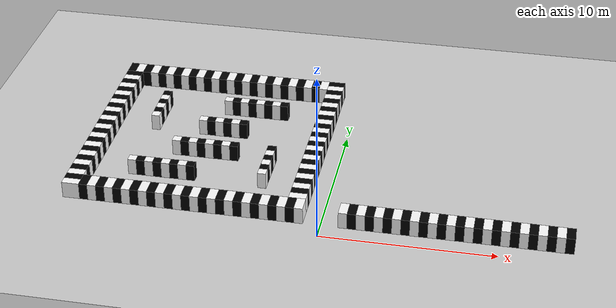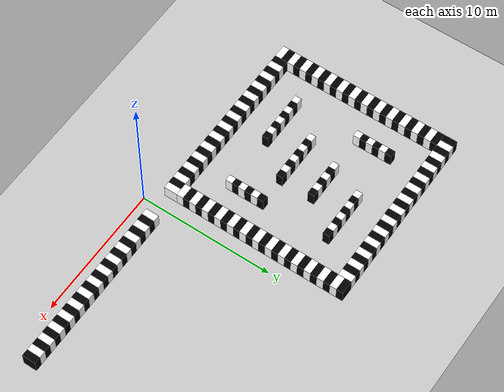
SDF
<sdf version="1.9">
 <world name="default">
  <model name="ground_plane">
   <static>true</static>
   <link name="link">
    <collision name="collision">
     <geometry><plane><normal>0 0 1</normal><size>100 100</size></plane></geometry>
    </collision>
    <visual name="visual">
     <geometry><plane><normal>0 0 1</normal><size>100 100</size></plane></geometry>
     <material>
      <ambient>0.8 0.8 0.8 1</ambient>
      <diffuse>0.8 0.8 0.8 1</diffuse>
      <specular>0.8 0.8 0.8 1</specular>
     </material>
    </visual>
   </link>
  </model>
  <model name="env3wall4">
   <static>true</static>
   <link name="link">
    <collision name="collision1">
     <geometry>
      <polyline>
       <point>1 1</point>
       <point>1 2</point>
       <point>14 2</point>
       <point>14 1</point>
       <height>1</height>
      </polyline>
     </geometry>
    </collision>
    <visual name="s1">
     <pose>1.25 1.5 0.5 0 0 0</pose>
     <geometry><box><size>0.5 1 1</size></box></geometry>
     <material><ambient>1 1 1 1</ambient><diffuse>1 1 1 1</diffuse></material>
    </visual>
    <visual name="s2">
     <pose>1.75 1.5 0.5 0 0 0</pose>
     <geometry><box><size>0.5 1 1</size></box></geometry>
     <material><ambient>0 0 0 1</ambient><diffuse>0 0 0 1</diffuse></material>
    </visual>
    <visual name="s3">
     <pose>2.25 1.5 0.5 0 0 0</pose>
     <geometry><box><size>0.5 1 1</size></box></geometry>
     <material><ambient>1 1 1 1</ambient><diffuse>1 1 1 1</diffuse></material>
    </visual>
    <visual name="s4">
     <pose>2.75 1.5 0.5 0 0 0</pose>
     <geometry><box><size>0.5 1 1</size></box></geometry>
     <material><ambient>0 0 0 1</ambient><diffuse>0 0 0 1</diffuse></material>
    </visual>
    <visual name="s5">
     <pose>3.25 1.5 0.5 0 0 0</pose>
     <geometry><box><size>0.5 1 1</size></box></geometry>
     <material><ambient>1 1 1 1</ambient><diffuse>1 1 1 1</diffuse></material>
    </visual>
    <visual name="s6">
     <pose>3.75 1.5 0.5 0 0 0</pose>
     <geometry><box><size>0.5 1 1</size></box></geometry>
     <material><ambient>0 0 0 1</ambient><diffuse>0 0 0 1</diffuse></material>
    </visual>
    <visual name="s7">
     <pose>4.25 1.5 0.5 0 0 0</pose>
     <geometry><box><size>0.5 1 1</size></box></geometry>
     <material><ambient>1 1 1 1</ambient><diffuse>1 1 1 1</diffuse></material>
    </visual>
    <visual name="s8">
     <pose>4.75 1.5 0.5 0 0 0</pose>
     <geometry><box><size>0.5 1 1</size></box></geometry>
     <material><ambient>0 0 0 1</ambient><diffuse>0 0 0 1</diffuse></material>
    </visual>
    <visual name="s9">
     <pose>5.25 1.5 0.5 0 0 0</pose>
     <geometry><box><size>0.5 1 1</size></box></geometry>
     <material><ambient>1 1 1 1</ambient><diffuse>1 1 1 1</diffuse></material>
    </visual>
    <visual name="s10">
     <pose>5.75 1.5 0.5 0 0 0</pose>
     <geometry><box><size>0.5 1 1</size></box></geometry>
     <material><ambient>0 0 0 1</ambient><diffuse>0 0 0 1</diffuse></material>
    </visual>
    <visual name="s11">
     <pose>6.25 1.5 0.5 0 0 0</pose>
     <geometry><box><size>0.5 1 1</size></box></geometry>
     <material><ambient>1 1 1 1</ambient><diffuse>1 1 1 1</diffuse></material>
    </visual>
    <visual name="s12">
     <pose>6.75 1.5 0.5 0 0 0</pose>
     <geometry><box><size>0.5 1 1</size></box></geometry>
     <material><ambient>0 0 0 1</ambient><diffuse>0 0 0 1</diffuse></material>
    </visual>
    <visual name="s13">
     <pose>7.25 1.5 0.5 0 0 0</pose>
     <geometry><box><size>0.5 1 1</size></box></geometry>
     <material><ambient>1 1 1 1</ambient><diffuse>1 1 1 1</diffuse></material>
    </visual>
    <visual name="s14">
     <pose>7.75 1.5 0.5 0 0 0</pose>
     <geometry><box><size>0.5 1 1</size></box></geometry>
     <material><ambient>0 0 0 1</ambient><diffuse>0 0 0 1</diffuse></material>
    </visual>
    <visual name="s15">
     <pose>8.25 1.5 0.5 0 0 0</pose>
     <geometry><box><size>0.5 1 1</size></box></geometry>
     <material><ambient>1 1 1 1</ambient><diffuse>1 1 1 1</diffuse></material>
    </visual>
    <visual name="s16">
     <pose>8.75 1.5 0.5 0 0 0</pose>
     <geometry><box><size>0.5 1 1</size></box></geometry>
     <material><ambient>0 0 0 1</ambient><diffuse>0 0 0 1</diffuse></material>
    </visual>
    <visual name="s17">
     <pose>9.25 1.5 0.5 0 0 0</pose>
     <geometry><box><size>0.5 1 1</size></box></geometry>
     <material><ambient>1 1 1 1</ambient><diffuse>1 1 1 1</diffuse></material>
    </visual>
    <visual name="s18">
     <pose>9.75 1.5 0.5 0 0 0</pose>
     <geometry><box><size>0.5 1 1</size></box></geometry>
     <material><ambient>0 0 0 1</ambient><diffuse>0 0 0 1</diffuse></material>
    </visual>
    <visual name="s19">
     <pose>10.25 1.5 0.5 0 0 0</pose>
     <geometry><box><size>0.5 1 1</size></box></geometry>
     <material><ambient>1 1 1 1</ambient><diffuse>1 1 1 1</diffuse></material>
    </visual>
    <visual name="s20">
     <pose>10.75 1.5 0.5 0 0 0</pose>
     <geometry><box><size>0.5 1 1</size></box></geometry>
     <material><ambient>0 0 0 1</ambient><diffuse>0 0 0 1</diffuse></material>
    </visual>
    <visual name="s21">
     <pose>11.25 1.5 0.5 0 0 0</pose>
     <geometry><box><size>0.5 1 1</size></box></geometry>
     <material><ambient>1 1 1 1</ambient><diffuse>1 1 1 1</diffuse></material>
    </visual>
    <visual name="s22">
     <pose>11.75 1.5 0.5 0 0 0</pose>
     <geometry><box><size>0.5 1 1</size></box></geometry>
     <material><ambient>0 0 0 1</ambient><diffuse>0 0 0 1</diffuse></material>
    </visual>
    <visual name="s23">
     <pose>12.25 1.5 0.5 0 0 0</pose>
     <geometry><box><size>0.5 1 1</size></box></geometry>
     <material><ambient>1 1 1 1</ambient><diffuse>1 1 1 1</diffuse></material>
    </visual>
    <visual name="s24">
     <pose>12.75 1.5 0.5 0 0 0</pose>
     <geometry><box><size>0.5 1 1</size></box></geometry>
     <material><ambient>0 0 0 1</ambient><diffuse>0 0 0 1</diffuse></material>
    </visual>
    <visual name="s25">
     <pose>13.25 1.5 0.5 0 0 0</pose>
     <geometry><box><size>0.5 1 1</size></box></geometry>
     <material><ambient>1 1 1 1</ambient><diffuse>1 1 1 1</diffuse></material>
    </visual>
    <visual name="s26">
     <pose>13.75 1.5 0.5 0 0 0</pose>
     <geometry><box><size>0.5 1 1</size></box></geometry>
     <material><ambient>0 0 0 1</ambient><diffuse>0 0 0 1</diffuse></material>
    </visual>
   </link>
  </model>
  <model name="env4wall1">
   <static>true</static>
   <link name="link">
    <collision name="collision1">
     <geometry>
      <polyline>
       <point>-2 2</point>
       <point>-1 2</point>
       <point>-1 15</point>
       <point>-2 15</point>
       <height>1</height>
      </polyline>
     </geometry>
    </collision>
    <visual name="s1">
     <pose>-1.5 2.25 0.5 0 0 0</pose>
     <geometry><box><size>1 0.5 1</size></box></geometry>
     <material><ambient>1 1 1 1</ambient><diffuse>1 1 1 1</diffuse></material>
    </visual>
    <visual name="s2">
     <pose>-1.5 2.75 0.5 0 0 0</pose>
     <geometry><box><size>1 0.5 1</size></box></geometry>
     <material><ambient>0 0 0 1</ambient><diffuse>0 0 0 1</diffuse></material>
    </visual>
    <visual name="s3">
     <pose>-1.5 3.25 0.5 0 0 0</pose>
     <geometry><box><size>1 0.5 1</size></box></geometry>
     <material><ambient>1 1 1 1</ambient><diffuse>1 1 1 1</diffuse></material>
    </visual>
    <visual name="s4">
     <pose>-1.5 3.75 0.5 0 0 0</pose>
     <geometry><box><size>1 0.5 1</size></box></geometry>
     <material><ambient>0 0 0 1</ambient><diffuse>0 0 0 1</diffuse></material>
    </visual>
    <visual name="s5">
     <pose>-1.5 4.25 0.5 0 0 0</pose>
     <geometry><box><size>1 0.5 1</size></box></geometry>
     <material><ambient>1 1 1 1</ambient><diffuse>1 1 1 1</diffuse></material>
    </visual>
    <visual name="s6">
     <pose>-1.5 4.75 0.5 0 0 0</pose>
     <geometry><box><size>1 0.5 1</size></box></geometry>
     <material><ambient>0 0 0 1</ambient><diffuse>0 0 0 1</diffuse></material>
    </visual>
    <visual name="s7">
     <pose>-1.5 5.25 0.5 0 0 0</pose>
     <geometry><box><size>1 0.5 1</size></box></geometry>
     <material><ambient>1 1 1 1</ambient><diffuse>1 1 1 1</diffuse></material>
    </visual>
    <visual name="s8">
     <pose>-1.5 5.75 0.5 0 0 0</pose>
     <geometry><box><size>1 0.5 1</size></box></geometry>
     <material><ambient>0 0 0 1</ambient><diffuse>0 0 0 1</diffuse></material>
    </visual>
    <visual name="s9">
     <pose>-1.5 6.25 0.5 0 0 0</pose>
     <geometry><box><size>1 0.5 1</size></box></geometry>
     <material><ambient>1 1 1 1</ambient><diffuse>1 1 1 1</diffuse></material>
    </visual>
    <visual name="s10">
     <pose>-1.5 6.75 0.5 0 0 0</pose>
     <geometry><box><size>1 0.5 1</size></box></geometry>
     <material><ambient>0 0 0 1</ambient><diffuse>0 0 0 1</diffuse></material>
    </visual>
    <visual name="s11">
     <pose>-1.5 7.25 0.5 0 0 0</pose>
     <geometry><box><size>1 0.5 1</size></box></geometry>
     <material><ambient>1 1 1 1</ambient><diffuse>1 1 1 1</diffuse></material>
    </visual>
    <visual name="s12">
     <pose>-1.5 7.75 0.5 0 0 0</pose>
     <geometry><box><size>1 0.5 1</size></box></geometry>
     <material><ambient>0 0 0 1</ambient><diffuse>0 0 0 1</diffuse></material>
    </visual>
    <visual name="s13">
     <pose>-1.5 8.25 0.5 0 0 0</pose>
     <geometry><box><size>1 0.5 1</size></box></geometry>
     <material><ambient>1 1 1 1</ambient><diffuse>1 1 1 1</diffuse></material>
    </visual>
    <visual name="s14">
     <pose>-1.5 8.75 0.5 0 0 0</pose>
     <geometry><box><size>1 0.5 1</size></box></geometry>
     <material><ambient>0 0 0 1</ambient><diffuse>0 0 0 1</diffuse></material>
    </visual>
    <visual name="s15">
     <pose>-1.5 9.25 0.5 0 0 0</pose>
     <geometry><box><size>1 0.5 1</size></box></geometry>
     <material><ambient>1 1 1 1</ambient><diffuse>1 1 1 1</diffuse></material>
    </visual>
    <visual name="s16">
     <pose>-1.5 9.75 0.5 0 0 0</pose>
     <geometry><box><size>1 0.5 1</size></box></geometry>
     <material><ambient>0 0 0 1</ambient><diffuse>0 0 0 1</diffuse></material>
    </visual>
    <visual name="s17">
     <pose>-1.5 10.25 0.5 0 0 0</pose>
     <geometry><box><size>1 0.5 1</size></box></geometry>
     <material><ambient>1 1 1 1</ambient><diffuse>1 1 1 1</diffuse></material>
    </visual>
    <visual name="s18">
     <pose>-1.5 10.75 0.5 0 0 0</pose>
     <geometry><box><size>1 0.5 1</size></box></geometry>
     <material><ambient>0 0 0 1</ambient><diffuse>0 0 0 1</diffuse></material>
    </visual>
    <visual name="s19">
     <pose>-1.5 11.25 0.5 0 0 0</pose>
     <geometry><box><size>1 0.5 1</size></box></geometry>
     <material><ambient>1 1 1 1</ambient><diffuse>1 1 1 1</diffuse></material>
    </visual>
    <visual name="s20">
     <pose>-1.5 11.75 0.5 0 0 0</pose>
     <geometry><box><size>1 0.5 1</size></box></geometry>
     <material><ambient>0 0 0 1</ambient><diffuse>0 0 0 1</diffuse></material>
    </visual>
    <visual name="s21">
     <pose>-1.5 12.25 0.5 0 0 0</pose>
     <geometry><box><size>1 0.5 1</size></box></geometry>
     <material><ambient>1 1 1 1</ambient><diffuse>1 1 1 1</diffuse></material>
    </visual>
    <visual name="s22">
     <pose>-1.5 12.75 0.5 0 0 0</pose>
     <geometry><box><size>1 0.5 1</size></box></geometry>
     <material><ambient>0 0 0 1</ambient><diffuse>0 0 0 1</diffuse></material>
    </visual>
    <visual name="s23">
     <pose>-1.5 13.25 0.5 0 0 0</pose>
     <geometry><box><size>1 0.5 1</size></box></geometry>
     <material><ambient>1 1 1 1</ambient><diffuse>1 1 1 1</diffuse></material>
    </visual>
    <visual name="s24">
     <pose>-1.5 13.75 0.5 0 0 0</pose>
     <geometry><box><size>1 0.5 1</size></box></geometry>
     <material><ambient>0 0 0 1</ambient><diffuse>0 0 0 1</diffuse></material>
    </visual>
    <visual name="s25">
     <pose>-1.5 14.25 0.5 0 0 0</pose>
     <geometry><box><size>1 0.5 1</size></box></geometry>
     <material><ambient>1 1 1 1</ambient><diffuse>1 1 1 1</diffuse></material>
    </visual>
    <visual name="s26">
     <pose>-1.5 14.75 0.5 0 0 0</pose>
     <geometry><box><size>1 0.5 1</size></box></geometry>
     <material><ambient>0 0 0 1</ambient><diffuse>0 0 0 1</diffuse></material>
    </visual>
   </link>
  </model>
  <model name="env4wall2">
   <static>true</static>
   <link name="link">
    <collision name="collision1">
     <geometry>
      <polyline>
       <point>-2 14</point>
       <point>-2 15</point>
       <point>-15 15</point>
       <point>-15 14</point>
       <height>1</height>
      </polyline>
     </geometry>
    </collision>
    <visual name="s1">
     <pose>-2.25 14.5 0.5 0 0 0</pose>
     <geometry><box><size>0.5 1 1</size></box></geometry>
     <material><ambient>1 1 1 1</ambient><diffuse>1 1 1 1</diffuse></material>
    </visual>
    <visual name="s2">
     <pose>-2.75 14.5 0.5 0 0 0</pose>
     <geometry><box><size>0.5 1 1</size></box></geometry>
     <material><ambient>0 0 0 1</ambient><diffuse>0 0 0 1</diffuse></material>
    </visual>
    <visual name="s3">
     <pose>-3.25 14.5 0.5 0 0 0</pose>
     <geometry><box><size>0.5 1 1</size></box></geometry>
     <material><ambient>1 1 1 1</ambient><diffuse>1 1 1 1</diffuse></material>
    </visual>
    <visual name="s4">
     <pose>-3.75 14.5 0.5 0 0 0</pose>
     <geometry><box><size>0.5 1 1</size></box></geometry>
     <material><ambient>0 0 0 1</ambient><diffuse>0 0 0 1</diffuse></material>
    </visual>
    <visual name="s5">
     <pose>-4.25 14.5 0.5 0 0 0</pose>
     <geometry><box><size>0.5 1 1</size></box></geometry>
     <material><ambient>1 1 1 1</ambient><diffuse>1 1 1 1</diffuse></material>
    </visual>
    <visual name="s6">
     <pose>-4.75 14.5 0.5 0 0 0</pose>
     <geometry><box><size>0.5 1 1</size></box></geometry>
     <material><ambient>0 0 0 1</ambient><diffuse>0 0 0 1</diffuse></material>
    </visual>
    <visual name="s7">
     <pose>-5.25 14.5 0.5 0 0 0</pose>
     <geometry><box><size>0.5 1 1</size></box></geometry>
     <material><ambient>1 1 1 1</ambient><diffuse>1 1 1 1</diffuse></material>
    </visual>
    <visual name="s8">
     <pose>-5.75 14.5 0.5 0 0 0</pose>
     <geometry><box><size>0.5 1 1</size></box></geometry>
     <material><ambient>0 0 0 1</ambient><diffuse>0 0 0 1</diffuse></material>
    </visual>
    <visual name="s9">
     <pose>-6.25 14.5 0.5 0 0 0</pose>
     <geometry><box><size>0.5 1 1</size></box></geometry>
     <material><ambient>1 1 1 1</ambient><diffuse>1 1 1 1</diffuse></material>
    </visual>
    <visual name="s10">
     <pose>-6.75 14.5 0.5 0 0 0</pose>
     <geometry><box><size>0.5 1 1</size></box></geometry>
     <material><ambient>0 0 0 1</ambient><diffuse>0 0 0 1</diffuse></material>
    </visual>
    <visual name="s11">
     <pose>-7.25 14.5 0.5 0 0 0</pose>
     <geometry><box><size>0.5 1 1</size></box></geometry>
     <material><ambient>1 1 1 1</ambient><diffuse>1 1 1 1</diffuse></material>
    </visual>
    <visual name="s12">
     <pose>-7.75 14.5 0.5 0 0 0</pose>
     <geometry><box><size>0.5 1 1</size></box></geometry>
     <material><ambient>0 0 0 1</ambient><diffuse>0 0 0 1</diffuse></material>
    </visual>
    <visual name="s13">
     <pose>-8.25 14.5 0.5 0 0 0</pose>
     <geometry><box><size>0.5 1 1</size></box></geometry>
     <material><ambient>1 1 1 1</ambient><diffuse>1 1 1 1</diffuse></material>
    </visual>
    <visual name="s14">
     <pose>-8.75 14.5 0.5 0 0 0</pose>
     <geometry><box><size>0.5 1 1</size></box></geometry>
     <material><ambient>0 0 0 1</ambient><diffuse>0 0 0 1</diffuse></material>
    </visual>
    <visual name="s15">
     <pose>-9.25 14.5 0.5 0 0 0</pose>
     <geometry><box><size>0.5 1 1</size></box></geometry>
     <material><ambient>1 1 1 1</ambient><diffuse>1 1 1 1</diffuse></material>
    </visual>
    <visual name="s16">
     <pose>-9.75 14.5 0.5 0 0 0</pose>
     <geometry><box><size>0.5 1 1</size></box></geometry>
     <material><ambient>0 0 0 1</ambient><diffuse>0 0 0 1</diffuse></material>
    </visual>
    <visual name="s17">
     <pose>-10.25 14.5 0.5 0 0 0</pose>
     <geometry><box><size>0.5 1 1</size></box></geometry>
     <material><ambient>1 1 1 1</ambient><diffuse>1 1 1 1</diffuse></material>
    </visual>
    <visual name="s18">
     <pose>-10.75 14.5 0.5 0 0 0</pose>
     <geometry><box><size>0.5 1 1</size></box></geometry>
     <material><ambient>0 0 0 1</ambient><diffuse>0 0 0 1</diffuse></material>
    </visual>
    <visual name="s19">
     <pose>-11.25 14.5 0.5 0 0 0</pose>
     <geometry><box><size>0.5 1 1</size></box></geometry>
     <material><ambient>1 1 1 1</ambient><diffuse>1 1 1 1</diffuse></material>
    </visual>
    <visual name="s20">
     <pose>-11.75 14.5 0.5 0 0 0</pose>
     <geometry><box><size>0.5 1 1</size></box></geometry>
     <material><ambient>0 0 0 1</ambient><diffuse>0 0 0 1</diffuse></material>
    </visual>
    <visual name="s21">
     <pose>-12.25 14.5 0.5 0 0 0</pose>
     <geometry><box><size>0.5 1 1</size></box></geometry>
     <material><ambient>1 1 1 1</ambient><diffuse>1 1 1 1</diffuse></material>
    </visual>
    <visual name="s22">
     <pose>-12.75 14.5 0.5 0 0 0</pose>
     <geometry><box><size>0.5 1 1</size></box></geometry>
     <material><ambient>0 0 0 1</ambient><diffuse>0 0 0 1</diffuse></material>
    </visual>
    <visual name="s23">
     <pose>-13.25 14.5 0.5 0 0 0</pose>
     <geometry><box><size>0.5 1 1</size></box></geometry>
     <material><ambient>1 1 1 1</ambient><diffuse>1 1 1 1</diffuse></material>
    </visual>
    <visual name="s24">
     <pose>-13.75 14.5 0.5 0 0 0</pose>
     <geometry><box><size>0.5 1 1</size></box></geometry>
     <material><ambient>0 0 0 1</ambient><diffuse>0 0 0 1</diffuse></material>
    </visual>
    <visual name="s25">
     <pose>-14.25 14.5 0.5 0 0 0</pose>
     <geometry><box><size>0.5 1 1</size></box></geometry>
     <material><ambient>1 1 1 1</ambient><diffuse>1 1 1 1</diffuse></material>
    </visual>
    <visual name="s26">
     <pose>-14.75 14.5 0.5 0 0 0</pose>
     <geometry><box><size>0.5 1 1</size></box></geometry>
     <material><ambient>0 0 0 1</ambient><diffuse>0 0 0 1</diffuse></material>
    </visual>
   </link>
  </model>
  <model name="env4wall3">
   <static>true</static>
   <link name="link">
    <collision name="collision1">
     <geometry>
      <polyline>
       <point>-14 1</point>
       <point>-14 14</point>
       <point>-15 14</point>
       <point>-15 1</point>
       <height>1</height>
      </polyline>
     </geometry>
    </collision>
    <visual name="s1">
     <pose>-14.5 1.25 0.5 0 0 0</pose>
     <geometry><box><size>1 0.5 1</size></box></geometry>
     <material><ambient>1 1 1 1</ambient><diffuse>1 1 1 1</diffuse></material>
    </visual>
    <visual name="s2">
     <pose>-14.5 1.75 0.5 0 0 0</pose>
     <geometry><box><size>1 0.5 1</size></box></geometry>
     <material><ambient>0 0 0 1</ambient><diffuse>0 0 0 1</diffuse></material>
    </visual>
    <visual name="s3">
     <pose>-14.5 2.25 0.5 0 0 0</pose>
     <geometry><box><size>1 0.5 1</size></box></geometry>
     <material><ambient>1 1 1 1</ambient><diffuse>1 1 1 1</diffuse></material>
    </visual>
    <visual name="s4">
     <pose>-14.5 2.75 0.5 0 0 0</pose>
     <geometry><box><size>1 0.5 1</size></box></geometry>
     <material><ambient>0 0 0 1</ambient><diffuse>0 0 0 1</diffuse></material>
    </visual>
    <visual name="s5">
     <pose>-14.5 3.25 0.5 0 0 0</pose>
     <geometry><box><size>1 0.5 1</size></box></geometry>
     <material><ambient>1 1 1 1</ambient><diffuse>1 1 1 1</diffuse></material>
    </visual>
    <visual name="s6">
     <pose>-14.5 3.75 0.5 0 0 0</pose>
     <geometry><box><size>1 0.5 1</size></box></geometry>
     <material><ambient>0 0 0 1</ambient><diffuse>0 0 0 1</diffuse></material>
    </visual>
    <visual name="s7">
     <pose>-14.5 4.25 0.5 0 0 0</pose>
     <geometry><box><size>1 0.5 1</size></box></geometry>
     <material><ambient>1 1 1 1</ambient><diffuse>1 1 1 1</diffuse></material>
    </visual>
    <visual name="s8">
     <pose>-14.5 4.75 0.5 0 0 0</pose>
     <geometry><box><size>1 0.5 1</size></box></geometry>
     <material><ambient>0 0 0 1</ambient><diffuse>0 0 0 1</diffuse></material>
    </visual>
    <visual name="s9">
     <pose>-14.5 5.25 0.5 0 0 0</pose>
     <geometry><box><size>1 0.5 1</size></box></geometry>
     <material><ambient>1 1 1 1</ambient><diffuse>1 1 1 1</diffuse></material>
    </visual>
    <visual name="s10">
     <pose>-14.5 5.75 0.5 0 0 0</pose>
     <geometry><box><size>1 0.5 1</size></box></geometry>
     <material><ambient>0 0 0 1</ambient><diffuse>0 0 0 1</diffuse></material>
    </visual>
    <visual name="s11">
     <pose>-14.5 6.25 0.5 0 0 0</pose>
     <geometry><box><size>1 0.5 1</size></box></geometry>
     <material><ambient>1 1 1 1</ambient><diffuse>1 1 1 1</diffuse></material>
    </visual>
    <visual name="s12">
     <pose>-14.5 6.75 0.5 0 0 0</pose>
     <geometry><box><size>1 0.5 1</size></box></geometry>
     <material><ambient>0 0 0 1</ambient><diffuse>0 0 0 1</diffuse></material>
    </visual>
    <visual name="s13">
     <pose>-14.5 7.25 0.5 0 0 0</pose>
     <geometry><box><size>1 0.5 1</size></box></geometry>
     <material><ambient>1 1 1 1</ambient><diffuse>1 1 1 1</diffuse></material>
    </visual>
    <visual name="s14">
     <pose>-14.5 7.75 0.5 0 0 0</pose>
     <geometry><box><size>1 0.5 1</size></box></geometry>
     <material><ambient>0 0 0 1</ambient><diffuse>0 0 0 1</diffuse></material>
    </visual>
    <visual name="s15">
     <pose>-14.5 8.25 0.5 0 0 0</pose>
     <geometry><box><size>1 0.5 1</size></box></geometry>
     <material><ambient>1 1 1 1</ambient><diffuse>1 1 1 1</diffuse></material>
    </visual>
    <visual name="s16">
     <pose>-14.5 8.75 0.5 0 0 0</pose>
     <geometry><box><size>1 0.5 1</size></box></geometry>
     <material><ambient>0 0 0 1</ambient><diffuse>0 0 0 1</diffuse></material>
    </visual>
    <visual name="s17">
     <pose>-14.5 9.25 0.5 0 0 0</pose>
     <geometry><box><size>1 0.5 1</size></box></geometry>
     <material><ambient>1 1 1 1</ambient><diffuse>1 1 1 1</diffuse></material>
    </visual>
    <visual name="s18">
     <pose>-14.5 9.75 0.5 0 0 0</pose>
     <geometry><box><size>1 0.5 1</size></box></geometry>
     <material><ambient>0 0 0 1</ambient><diffuse>0 0 0 1</diffuse></material>
    </visual>
    <visual name="s19">
     <pose>-14.5 10.25 0.5 0 0 0</pose>
     <geometry><box><size>1 0.5 1</size></box></geometry>
     <material><ambient>1 1 1 1</ambient><diffuse>1 1 1 1</diffuse></material>
    </visual>
    <visual name="s20">
     <pose>-14.5 10.75 0.5 0 0 0</pose>
     <geometry><box><size>1 0.5 1</size></box></geometry>
     <material><ambient>0 0 0 1</ambient><diffuse>0 0 0 1</diffuse></material>
    </visual>
    <visual name="s21">
     <pose>-14.5 11.25 0.5 0 0 0</pose>
     <geometry><box><size>1 0.5 1</size></box></geometry>
     <material><ambient>1 1 1 1</ambient><diffuse>1 1 1 1</diffuse></material>
    </visual>
    <visual name="s22">
     <pose>-14.5 11.75 0.5 0 0 0</pose>
     <geometry><box><size>1 0.5 1</size></box></geometry>
     <material><ambient>0 0 0 1</ambient><diffuse>0 0 0 1</diffuse></material>
    </visual>
    <visual name="s23">
     <pose>-14.5 12.25 0.5 0 0 0</pose>
     <geometry><box><size>1 0.5 1</size></box></geometry>
     <material><ambient>1 1 1 1</ambient><diffuse>1 1 1 1</diffuse></material>
    </visual>
    <visual name="s24">
     <pose>-14.5 12.75 0.5 0 0 0</pose>
     <geometry><box><size>1 0.5 1</size></box></geometry>
     <material><ambient>0 0 0 1</ambient><diffuse>0 0 0 1</diffuse></material>
    </visual>
    <visual name="s25">
     <pose>-14.5 13.25 0.5 0 0 0</pose>
     <geometry><box><size>1 0.5 1</size></box></geometry>
     <material><ambient>1 1 1 1</ambient><diffuse>1 1 1 1</diffuse></material>
    </visual>
    <visual name="s26">
     <pose>-14.5 13.75 0.5 0 0 0</pose>
     <geometry><box><size>1 0.5 1</size></box></geometry>
     <material><ambient>0 0 0 1</ambient><diffuse>0 0 0 1</diffuse></material>
    </visual>
   </link>
  </model>
  <model name="env4wall4">
   <static>true</static>
   <link name="link">
    <collision name="collision1">
     <geometry>
      <polyline>
       <point>-1 1</point>
       <point>-1 2</point>
       <point>-14 2</point>
       <point>-14 1</point>
       <height>1</height>
      </polyline>
     </geometry>
    </collision>
    <visual name="s1">
     <pose>-1.25 1.5 0.5 0 0 0</pose>
     <geometry><box><size>0.5 1 1</size></box></geometry>
     <material><ambient>1 1 1 1</ambient><diffuse>1 1 1 1</diffuse></material>
    </visual>
    <visual name="s2">
     <pose>-1.75 1.5 0.5 0 0 0</pose>
     <geometry><box><size>0.5 1 1</size></box></geometry>
     <material><ambient>0 0 0 1</ambient><diffuse>0 0 0 1</diffuse></material>
    </visual>
    <visual name="s3">
     <pose>-2.25 1.5 0.5 0 0 0</pose>
     <geometry><box><size>0.5 1 1</size></box></geometry>
     <material><ambient>1 1 1 1</ambient><diffuse>1 1 1 1</diffuse></material>
    </visual>
    <visual name="s4">
     <pose>-2.75 1.5 0.5 0 0 0</pose>
     <geometry><box><size>0.5 1 1</size></box></geometry>
     <material><ambient>0 0 0 1</ambient><diffuse>0 0 0 1</diffuse></material>
    </visual>
    <visual name="s5">
     <pose>-3.25 1.5 0.5 0 0 0</pose>
     <geometry><box><size>0.5 1 1</size></box></geometry>
     <material><ambient>1 1 1 1</ambient><diffuse>1 1 1 1</diffuse></material>
    </visual>
    <visual name="s6">
     <pose>-3.75 1.5 0.5 0 0 0</pose>
     <geometry><box><size>0.5 1 1</size></box></geometry>
     <material><ambient>0 0 0 1</ambient><diffuse>0 0 0 1</diffuse></material>
    </visual>
    <visual name="s7">
     <pose>-4.25 1.5 0.5 0 0 0</pose>
     <geometry><box><size>0.5 1 1</size></box></geometry>
     <material><ambient>1 1 1 1</ambient><diffuse>1 1 1 1</diffuse></material>
    </visual>
    <visual name="s8">
     <pose>-4.75 1.5 0.5 0 0 0</pose>
     <geometry><box><size>0.5 1 1</size></box></geometry>
     <material><ambient>0 0 0 1</ambient><diffuse>0 0 0 1</diffuse></material>
    </visual>
    <visual name="s9">
     <pose>-5.25 1.5 0.5 0 0 0</pose>
     <geometry><box><size>0.5 1 1</size></box></geometry>
     <material><ambient>1 1 1 1</ambient><diffuse>1 1 1 1</diffuse></material>
    </visual>
    <visual name="s10">
     <pose>-5.75 1.5 0.5 0 0 0</pose>
     <geometry><box><size>0.5 1 1</size></box></geometry>
     <material><ambient>0 0 0 1</ambient><diffuse>0 0 0 1</diffuse></material>
    </visual>
    <visual name="s11">
     <pose>-6.25 1.5 0.5 0 0 0</pose>
     <geometry><box><size>0.5 1 1</size></box></geometry>
     <material><ambient>1 1 1 1</ambient><diffuse>1 1 1 1</diffuse></material>
    </visual>
    <visual name="s12">
     <pose>-6.75 1.5 0.5 0 0 0</pose>
     <geometry><box><size>0.5 1 1</size></box></geometry>
     <material><ambient>0 0 0 1</ambient><diffuse>0 0 0 1</diffuse></material>
    </visual>
    <visual name="s13">
     <pose>-7.25 1.5 0.5 0 0 0</pose>
     <geometry><box><size>0.5 1 1</size></box></geometry>
     <material><ambient>1 1 1 1</ambient><diffuse>1 1 1 1</diffuse></material>
    </visual>
    <visual name="s14">
     <pose>-7.75 1.5 0.5 0 0 0</pose>
     <geometry><box><size>0.5 1 1</size></box></geometry>
     <material><ambient>0 0 0 1</ambient><diffuse>0 0 0 1</diffuse></material>
    </visual>
    <visual name="s15">
     <pose>-8.25 1.5 0.5 0 0 0</pose>
     <geometry><box><size>0.5 1 1</size></box></geometry>
     <material><ambient>1 1 1 1</ambient><diffuse>1 1 1 1</diffuse></material>
    </visual>
    <visual name="s16">
     <pose>-8.75 1.5 0.5 0 0 0</pose>
     <geometry><box><size>0.5 1 1</size></box></geometry>
     <material><ambient>0 0 0 1</ambient><diffuse>0 0 0 1</diffuse></material>
    </visual>
    <visual name="s17">
     <pose>-9.25 1.5 0.5 0 0 0</pose>
     <geometry><box><size>0.5 1 1</size></box></geometry>
     <material><ambient>1 1 1 1</ambient><diffuse>1 1 1 1</diffuse></material>
    </visual>
    <visual name="s18">
     <pose>-9.75 1.5 0.5 0 0 0</pose>
     <geometry><box><size>0.5 1 1</size></box></geometry>
     <material><ambient>0 0 0 1</ambient><diffuse>0 0 0 1</diffuse></material>
    </visual>
    <visual name="s19">
     <pose>-10.25 1.5 0.5 0 0 0</pose>
     <geometry><box><size>0.5 1 1</size></box></geometry>
     <material><ambient>1 1 1 1</ambient><diffuse>1 1 1 1</diffuse></material>
    </visual>
    <visual name="s20">
     <pose>-10.75 1.5 0.5 0 0 0</pose>
     <geometry><box><size>0.5 1 1</size></box></geometry>
     <material><ambient>0 0 0 1</ambient><diffuse>0 0 0 1</diffuse></material>
    </visual>
    <visual name="s21">
     <pose>-11.25 1.5 0.5 0 0 0</pose>
     <geometry><box><size>0.5 1 1</size></box></geometry>
     <material><ambient>1 1 1 1</ambient><diffuse>1 1 1 1</diffuse></material>
    </visual>
    <visual name="s22">
     <pose>-11.75 1.5 0.5 0 0 0</pose>
     <geometry><box><size>0.5 1 1</size></box></geometry>
     <material><ambient>0 0 0 1</ambient><diffuse>0 0 0 1</diffuse></material>
    </visual>
    <visual name="s23">
     <pose>-12.25 1.5 0.5 0 0 0</pose>
     <geometry><box><size>0.5 1 1</size></box></geometry>
     <material><ambient>1 1 1 1</ambient><diffuse>1 1 1 1</diffuse></material>
    </visual>
    <visual name="s24">
     <pose>-12.75 1.5 0.5 0 0 0</pose>
     <geometry><box><size>0.5 1 1</size></box></geometry>
     <material><ambient>0 0 0 1</ambient><diffuse>0 0 0 1</diffuse></material>
    </visual>
    <visual name="s25">
     <pose>-13.25 1.5 0.5 0 0 0</pose>
     <geometry><box><size>0.5 1 1</size></box></geometry>
     <material><ambient>1 1 1 1</ambient><diffuse>1 1 1 1</diffuse></material>
    </visual>
    <visual name="s26">
     <pose>-13.75 1.5 0.5 0 0 0</pose>
     <geometry><box><size>0.5 1 1</size></box></geometry>
     <material><ambient>0 0 0 1</ambient><diffuse>0 0 0 1</diffuse></material>
    </visual>
   </link>
  </model>
  <model name="env4obs1">
   <static>true</static>
   <link name="link">
    <collision name="collision1">
     <geometry>
      <polyline>
       <point>-6 9</point>
       <point>-6 9.5</point>
       <point>-9 9.5</point>
       <point>-9 9</point>
       <height>1</height>
      </polyline>
     </geometry>
    </collision>
    <visual name="s1">
     <pose>-8.75 9.25 0.5 0 0 0</pose>
     <geometry><box><size>0.5 0.5 1</size></box></geometry>
     <material><ambient>1 1 1 1</ambient><diffuse>1 1 1 1</diffuse></material>
    </visual>
    <visual name="s2">
     <pose>-8.25 9.25 0.5 0 0 0</pose>
     <geometry><box><size>0.5 0.5 1</size></box></geometry>
     <material><ambient>0 0 0 1</ambient><diffuse>0 0 0 1</diffuse></material>
    </visual>
    <visual name="s3">
     <pose>-7.75 9.25 0.5 0 0 0</pose>
     <geometry><box><size>0.5 0.5 1</size></box></geometry>
     <material><ambient>1 1 1 1</ambient><diffuse>1 1 1 1</diffuse></material>
    </visual>
    <visual name="s4">
     <pose>-7.25 9.25 0.5 0 0 0</pose>
     <geometry><box><size>0.5 0.5 1</size></box></geometry>
     <material><ambient>0 0 0 1</ambient><diffuse>0 0 0 1</diffuse></material>
    </visual>
    <visual name="s5">
     <pose>-6.75 9.25 0.5 0 0 0</pose>
     <geometry><box><size>0.5 0.5 1</size></box></geometry>
     <material><ambient>1 1 1 1</ambient><diffuse>1 1 1 1</diffuse></material>
    </visual>
    <visual name="s6">
     <pose>-6.25 9.25 0.5 0 0 0</pose>
     <geometry><box><size>0.5 0.5 1</size></box></geometry>
     <material><ambient>0 0 0 1</ambient><diffuse>0 0 0 1</diffuse></material>
    </visual>
   </link>
  </model>
  <model name="env4obs2">
   <static>true</static>
   <link name="link">
    <collision name="collision1">
     <geometry>
      <polyline>
       <point>-6 7</point>
       <point>-6 6.5</point>
       <point>-10 6.5</point>
       <point>-10 7</point>
       <height>1</height>
      </polyline>
     </geometry>
    </collision>
    <visual name="s1">
     <pose>-9.75 6.75 0.5 0 0 0</pose>
     <geometry><box><size>0.5 0.5 1</size></box></geometry>
     <material><ambient>1 1 1 1</ambient><diffuse>1 1 1 1</diffuse></material>
    </visual>
    <visual name="s2">
     <pose>-9.25 6.75 0.5 0 0 0</pose>
     <geometry><box><size>0.5 0.5 1</size></box></geometry>
     <material><ambient>0 0 0 1</ambient><diffuse>0 0 0 1</diffuse></material>
    </visual>
    <visual name="s3">
     <pose>-8.75 6.75 0.5 0 0 0</pose>
     <geometry><box><size>0.5 0.5 1</size></box></geometry>
     <material><ambient>1 1 1 1</ambient><diffuse>1 1 1 1</diffuse></material>
    </visual>
    <visual name="s4">
     <pose>-8.25 6.75 0.5 0 0 0</pose>
     <geometry><box><size>0.5 0.5 1</size></box></geometry>
     <material><ambient>0 0 0 1</ambient><diffuse>0 0 0 1</diffuse></material>
    </visual>
    <visual name="s5">
     <pose>-7.75 6.75 0.5 0 0 0</pose>
     <geometry><box><size>0.5 0.5 1</size></box></geometry>
     <material><ambient>1 1 1 1</ambient><diffuse>1 1 1 1</diffuse></material>
    </visual>
    <visual name="s6">
     <pose>-7.25 6.75 0.5 0 0 0</pose>
     <geometry><box><size>0.5 0.5 1</size></box></geometry>
     <material><ambient>0 0 0 1</ambient><diffuse>0 0 0 1</diffuse></material>
    </visual>
    <visual name="s7">
     <pose>-6.75 6.75 0.5 0 0 0</pose>
     <geometry><box><size>0.5 0.5 1</size></box></geometry>
     <material><ambient>1 1 1 1</ambient><diffuse>1 1 1 1</diffuse></material>
    </visual>
    <visual name="s8">
     <pose>-6.25 6.75 0.5 0 0 0</pose>
     <geometry><box><size>0.5 0.5 1</size></box></geometry>
     <material><ambient>0 0 0 1</ambient><diffuse>0 0 0 1</diffuse></material>
    </visual>
   </link>
  </model>
  <model name="env4obs3">
   <static>true</static>
   <link name="link">
    <collision name="collision1">
     <geometry>
      <polyline>
       <point>-4 11.5</point>
       <point>-4 12</point>
       <point>-8 12</point>
       <point>-8 11.5</point>
       <height>1</height>
      </polyline>
     </geometry>
    </collision>
    <visual name="s1">
     <pose>-7.75 11.75 0.5 0 0 0</pose>
     <geometry><box><size>0.5 0.5 1</size></box></geometry>
     <material><ambient>1 1 1 1</ambient><diffuse>1 1 1 1</diffuse></material>
    </visual>
    <visual name="s2">
     <pose>-7.25 11.75 0.5 0 0 0</pose>
     <geometry><box><size>0.5 0.5 1</size></box></geometry>
     <material><ambient>0 0 0 1</ambient><diffuse>0 0 0 1</diffuse></material>
    </visual>
    <visual name="s3">
     <pose>-6.75 11.75 0.5 0 0 0</pose>
     <geometry><box><size>0.5 0.5 1</size></box></geometry>
     <material><ambient>1 1 1 1</ambient><diffuse>1 1 1 1</diffuse></material>
    </visual>
    <visual name="s4">
     <pose>-6.25 11.75 0.5 0 0 0</pose>
     <geometry><box><size>0.5 0.5 1</size></box></geometry>
     <material><ambient>0 0 0 1</ambient><diffuse>0 0 0 1</diffuse></material>
    </visual>
    <visual name="s5">
     <pose>-5.75 11.75 0.5 0 0 0</pose>
     <geometry><box><size>0.5 0.5 1</size></box></geometry>
     <material><ambient>1 1 1 1</ambient><diffuse>1 1 1 1</diffuse></material>
    </visual>
    <visual name="s6">
     <pose>-5.25 11.75 0.5 0 0 0</pose>
     <geometry><box><size>0.5 0.5 1</size></box></geometry>
     <material><ambient>0 0 0 1</ambient><diffuse>0 0 0 1</diffuse></material>
    </visual>
    <visual name="s7">
     <pose>-4.75 11.75 0.5 0 0 0</pose>
     <geometry><box><size>0.5 0.5 1</size></box></geometry>
     <material><ambient>1 1 1 1</ambient><diffuse>1 1 1 1</diffuse></material>
    </visual>
    <visual name="s8">
     <pose>-4.25 11.75 0.5 0 0 0</pose>
     <geometry><box><size>0.5 0.5 1</size></box></geometry>
     <material><ambient>0 0 0 1</ambient><diffuse>0 0 0 1</diffuse></material>
    </visual>
   </link>
  </model>
  <model name="env4obs4">
   <static>true</static>
   <link name="link">
    <collision name="collision1">
     <geometry>
      <polyline>
       <point>-11.5 9</point>
       <point>-11.5 12</point>
       <point>-12 12</point>
       <point>-12 9</point>
       <height>1</height>
      </polyline>
     </geometry>
    </collision>
    <visual name="s1">
     <pose>-11.75 9.25 0.5 0 0 0</pose>
     <geometry><box><size>0.5 0.5 1</size></box></geometry>
     <material><ambient>1 1 1 1</ambient><diffuse>1 1 1 1</diffuse></material>
    </visual>
    <visual name="s2">
     <pose>-11.75 9.75 0.5 0 0 0</pose>
     <geometry><box><size>0.5 0.5 1</size></box></geometry>
     <material><ambient>0 0 0 1</ambient><diffuse>0 0 0 1</diffuse></material>
    </visual>
    <visual name="s3">
     <pose>-11.75 10.25 0.5 0 0 0</pose>
     <geometry><box><size>0.5 0.5 1</size></box></geometry>
     <material><ambient>1 1 1 1</ambient><diffuse>1 1 1 1</diffuse></material>
    </visual>
    <visual name="s4">
     <pose>-11.75 10.75 0.5 0 0 0</pose>
     <geometry><box><size>0.5 0.5 1</size></box></geometry>
     <material><ambient>0 0 0 1</ambient><diffuse>0 0 0 1</diffuse></material>
    </visual>
    <visual name="s5">
     <pose>-11.75 11.25 0.5 0 0 0</pose>
     <geometry><box><size>0.5 0.5 1</size></box></geometry>
     <material><ambient>1 1 1 1</ambient><diffuse>1 1 1 1</diffuse></material>
    </visual>
    <visual name="s6">
     <pose>-11.75 11.75 0.5 0 0 0</pose>
     <geometry><box><size>0.5 0.5 1</size></box></geometry>
     <material><ambient>0 0 0 1</ambient><diffuse>0 0 0 1</diffuse></material>
    </visual>
   </link>
  </model>
  <model name="env4obs5">
   <static>true</static>
   <link name="link">
    <collision name="collision1">
     <geometry>
      <polyline>
       <point>-3.75 4</point>
       <point>-3.75 7</point>
       <point>-4.25 7</point>
       <point>-4.25 4</point>
       <height>1</height>
      </polyline>
     </geometry>
    </collision>
    <visual name="s1">
     <pose>-4 4.25 0.5 0 0 0</pose>
     <geometry><box><size>0.5 0.5 1</size></box></geometry>
     <material><ambient>1 1 1 1</ambient><diffuse>1 1 1 1</diffuse></material>
    </visual>
    <visual name="s2">
     <pose>-4 4.75 0.5 0 0 0</pose>
     <geometry><box><size>0.5 0.5 1</size></box></geometry>
     <material><ambient>0 0 0 1</ambient><diffuse>0 0 0 1</diffuse></material>
    </visual>
    <visual name="s3">
     <pose>-4 5.25 0.5 0 0 0</pose>
     <geometry><box><size>0.5 0.5 1</size></box></geometry>
     <material><ambient>1 1 1 1</ambient><diffuse>1 1 1 1</diffuse></material>
    </visual>
    <visual name="s4">
     <pose>-4 5.75 0.5 0 0 0</pose>
     <geometry><box><size>0.5 0.5 1</size></box></geometry>
     <material><ambient>0 0 0 1</ambient><diffuse>0 0 0 1</diffuse></material>
    </visual>
    <visual name="s5">
     <pose>-4 6.25 0.5 0 0 0</pose>
     <geometry><box><size>0.5 0.5 1</size></box></geometry>
     <material><ambient>1 1 1 1</ambient><diffuse>1 1 1 1</diffuse></material>
    </visual>
    <visual name="s6">
     <pose>-4 6.75 0.5 0 0 0</pose>
     <geometry><box><size>0.5 0.5 1</size></box></geometry>
     <material><ambient>0 0 0 1</ambient><diffuse>0 0 0 1</diffuse></material>
    </visual>
   </link>
  </model>
  <model name="env4obs6">
   <static>true</static>
   <link name="link">
    <collision name="collision1">
     <geometry>
      <polyline>
       <point>-8 4</point>
       <point>-8 4.5</point>
       <point>-12 4.5</point>
       <point>-12 4</point>
       <height>1</height>
      </polyline>
     </geometry>
    </collision>
    <visual name="s1">
     <pose>-11.75 4.25 0.5 0 0 0</pose>
     <geometry><box><size>0.5 0.5 1</size></box></geometry>
     <material><ambient>1 1 1 1</ambient><diffuse>1 1 1 1</diffuse></material>
    </visual>
    <visual name="s2">
     <pose>-11.25 4.25 0.5 0 0 0</pose>
     <geometry><box><size>0.5 0.5 1</size></box></geometry>
     <material><ambient>0 0 0 1</ambient><diffuse>0 0 0 1</diffuse></material>
    </visual>
    <visual name="s3">
     <pose>-10.75 4.25 0.5 0 0 0</pose>
     <geometry><box><size>0.5 0.5 1</size></box></geometry>
     <material><ambient>1 1 1 1</ambient><diffuse>1 1 1 1</diffuse></material>
    </visual>
    <visual name="s4">
     <pose>-10.25 4.25 0.5 0 0 0</pose>
     <geometry><box><size>0.5 0.5 1</size></box></geometry>
     <material><ambient>0 0 0 1</ambient><diffuse>0 0 0 1</diffuse></material>
    </visual>
    <visual name="s5">
     <pose>-9.75 4.25 0.5 0 0 0</pose>
     <geometry><box><size>0.5 0.5 1</size></box></geometry>
     <material><ambient>1 1 1 1</ambient><diffuse>1 1 1 1</diffuse></material>
    </visual>
    <visual name="s6">
     <pose>-9.25 4.25 0.5 0 0 0</pose>
     <geometry><box><size>0.5 0.5 1</size></box></geometry>
     <material><ambient>0 0 0 1</ambient><diffuse>0 0 0 1</diffuse></material>
    </visual>
    <visual name="s7">
     <pose>-8.75 4.25 0.5 0 0 0</pose>
     <geometry><box><size>0.5 0.5 1</size></box></geometry>
     <material><ambient>1 1 1 1</ambient><diffuse>1 1 1 1</diffuse></material>
    </visual>
    <visual name="s8">
     <pose>-8.25 4.25 0.5 0 0 0</pose>
     <geometry><box><size>0.5 0.5 1</size></box></geometry>
     <material><ambient>0 0 0 1</ambient><diffuse>0 0 0 1</diffuse></material>
    </visual>
   </link>
  </model>
 </world>
</sdf>
